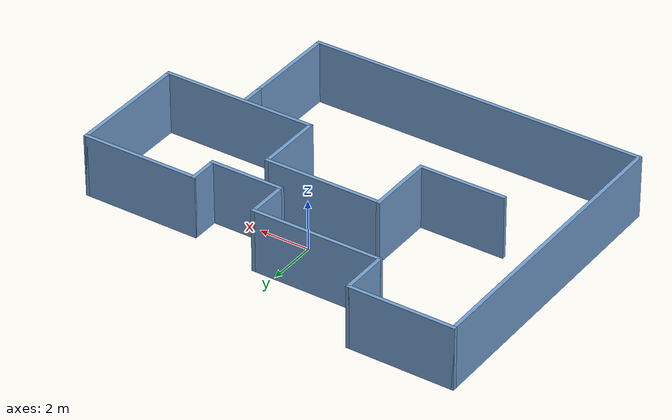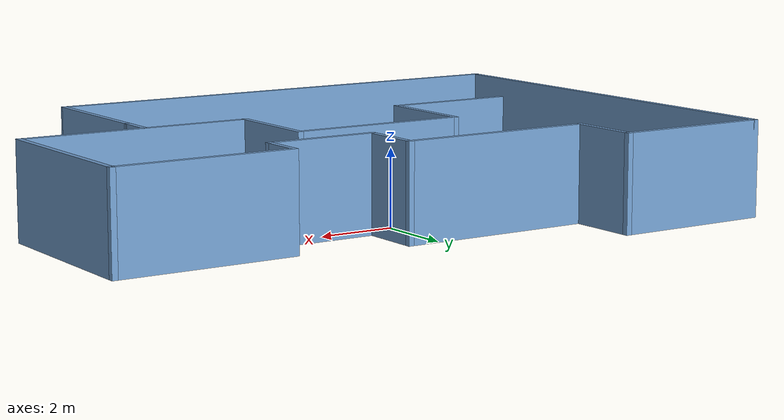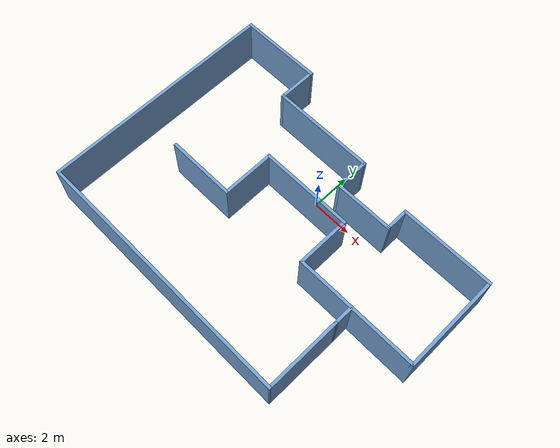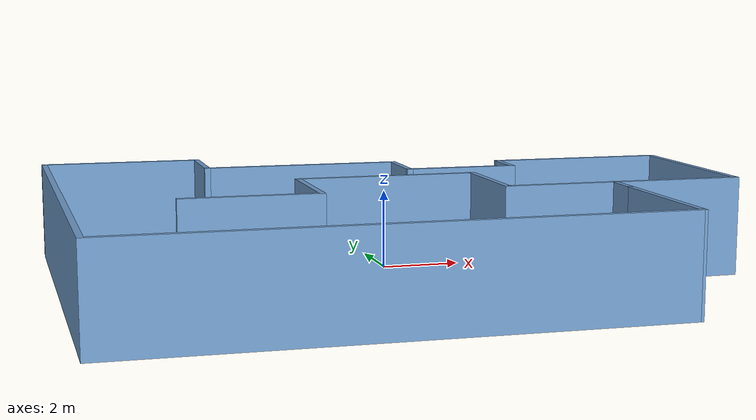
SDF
<?xml version='1.0'?>
<sdf version='1.7'>
  <model name='Building'>
    <pose>-0.055329 -2.0461 0 0 -0 0</pose>
    <link name='Wall_0'>
      <collision name='Wall_0_Collision'>
        <geometry>
          <box>
            <size>3.5 0.15 2.5</size>
          </box>
        </geometry>
        <pose>0 0 1.25 0 -0 0</pose>
      </collision>
      <visual name='Wall_0_Visual'>
        <pose>0 0 1.25 0 -0 0</pose>
        <geometry>
          <box>
            <size>3.5 0.15 2.5</size>
          </box>
        </geometry>
        <material>
          <script>
            <uri>file://media/materials/scripts/gazebo.material</uri>
            <name>Gazebo/Grey</name>
          </script>
          <ambient>0.447059 0.623529 0.811765 1</ambient>
        </material>
        <meta>
          <layer>0</layer>
        </meta>
      </visual>
      <pose>-4.05 -1.27487 0 0 -0 0</pose>
    </link>
    <link name='Wall_1'>
      <collision name='Wall_1_Collision'>
        <geometry>
          <box>
            <size>2.75 0.15 2.5</size>
          </box>
        </geometry>
        <pose>0 0 1.25 0 -0 0</pose>
      </collision>
      <visual name='Wall_1_Visual'>
        <pose>0 0 1.25 0 -0 0</pose>
        <geometry>
          <box>
            <size>2.75 0.15 2.5</size>
          </box>
        </geometry>
        <material>
          <script>
            <uri>file://media/materials/scripts/gazebo.material</uri>
            <name>Gazebo/Grey</name>
          </script>
          <ambient>0.447059 0.623529 0.811765 1</ambient>
        </material>
        <meta>
          <layer>0</layer>
        </meta>
      </visual>
      <pose>-2.375 0.025133 0 0 -0 1.5708</pose>
    </link>
    <link name='Wall_10'>
      <collision name='Wall_10_Collision'>
        <geometry>
          <box>
            <size>5.25 0.15 2.5</size>
          </box>
        </geometry>
        <pose>0 0 1.25 0 -0 0</pose>
      </collision>
      <visual name='Wall_10_Visual'>
        <pose>0 0 1.25 0 -0 0</pose>
        <geometry>
          <box>
            <size>5.25 0.15 2.5</size>
          </box>
        </geometry>
        <material>
          <script>
            <uri>file://media/materials/scripts/gazebo.material</uri>
            <name>Gazebo/Grey</name>
          </script>
          <ambient>0.447059 0.623529 0.811765 1</ambient>
        </material>
        <meta>
          <layer>0</layer>
        </meta>
      </visual>
      <pose>-1.675 4.07513 0 0 -0 3.14159</pose>
    </link>
    <link name='Wall_11'>
      <collision name='Wall_11_Collision'>
        <geometry>
          <box>
            <size>2 0.15 2.5</size>
          </box>
        </geometry>
        <pose>0 0 1.25 0 -0 0</pose>
      </collision>
      <visual name='Wall_11_Visual'>
        <pose>0 0 1.25 0 -0 0</pose>
        <geometry>
          <box>
            <size>2 0.15 2.5</size>
          </box>
        </geometry>
        <material>
          <script>
            <uri>file://media/materials/scripts/gazebo.material</uri>
            <name>Gazebo/Grey</name>
          </script>
          <ambient>0.447059 0.623529 0.811765 1</ambient>
        </material>
        <meta>
          <layer>0</layer>
        </meta>
      </visual>
      <pose>-4.225 5.00013 0 0 -0 1.5708</pose>
    </link>
    <link name='Wall_12'>
      <collision name='Wall_12_Collision'>
        <geometry>
          <box>
            <size>4.25 0.15 2.5</size>
          </box>
        </geometry>
        <pose>0 0 1.25 0 -0 0</pose>
      </collision>
      <visual name='Wall_12_Visual'>
        <pose>0 0 1.25 0 -0 0</pose>
        <geometry>
          <box>
            <size>4.25 0.15 2.5</size>
          </box>
        </geometry>
        <material>
          <script>
            <uri>file://media/materials/scripts/gazebo.material</uri>
            <name>Gazebo/Grey</name>
          </script>
          <ambient>0.447059 0.623529 0.811765 1</ambient>
        </material>
        <meta>
          <layer>0</layer>
        </meta>
      </visual>
      <pose>-6.275 5.92513 0 0 -0 3.14159</pose>
    </link>
    <link name='Wall_13'>
      <collision name='Wall_13_Collision'>
        <geometry>
          <box>
            <size>12 0.15 2.5</size>
          </box>
        </geometry>
        <pose>0 0 1.25 0 -0 0</pose>
      </collision>
      <visual name='Wall_13_Visual'>
        <pose>0 0 1.25 0 -0 0</pose>
        <geometry>
          <box>
            <size>12 0.15 2.5</size>
          </box>
        </geometry>
        <material>
          <script>
            <uri>file://media/materials/scripts/gazebo.material</uri>
            <name>Gazebo/Grey</name>
          </script>
          <ambient>0.447059 0.623529 0.811765 1</ambient>
        </material>
        <meta>
          <layer>0</layer>
        </meta>
      </visual>
      <pose>-8.325 0.000133 0 0 -0 -1.5708</pose>
    </link>
    <link name='Wall_14'>
      <collision name='Wall_14_Collision'>
        <geometry>
          <box>
            <size>13.5 0.15 2.5</size>
          </box>
        </geometry>
        <pose>0 0 1.25 0 -0 0</pose>
      </collision>
      <visual name='Wall_14_Visual'>
        <pose>0 0 1.25 0 -0 0</pose>
        <geometry>
          <box>
            <size>13.5 0.15 2.5</size>
          </box>
        </geometry>
        <material>
          <script>
            <uri>file://media/materials/scripts/gazebo.material</uri>
            <name>Gazebo/Grey</name>
          </script>
          <ambient>0.447059 0.623529 0.811765 1</ambient>
        </material>
        <meta>
          <layer>0</layer>
        </meta>
      </visual>
      <pose>-1.65 -5.92487 0 0 -0 0</pose>
    </link>
    <link name='Wall_15'>
      <collision name='Wall_15_Collision'>
        <geometry>
          <box>
            <size>3.86777 0.15 2.5</size>
          </box>
        </geometry>
        <pose>0 0 1.25 0 -0 0</pose>
      </collision>
      <visual name='Wall_15_Visual'>
        <pose>0 0 1.25 0 -0 0</pose>
        <geometry>
          <box>
            <size>3.86777 0.15 2.5</size>
          </box>
        </geometry>
        <material>
          <script>
            <uri>file://media/materials/scripts/gazebo.material</uri>
            <name>Gazebo/Grey</name>
          </script>
          <ambient>0.447059 0.623529 0.811765 1</ambient>
        </material>
        <meta>
          <layer>0</layer>
        </meta>
      </visual>
      <pose>5.03161 -4.06599 0 0 -0 1.56724</pose>
    </link>
    <link name='Wall_16'>
      <collision name='Wall_16_Collision'>
        <geometry>
          <box>
            <size>1 0.15 2.5</size>
          </box>
        </geometry>
        <pose>0 0 1.25 0 -0 0</pose>
      </collision>
      <visual name='Wall_16_Visual'>
        <pose>0 0 1.25 0 -0 0</pose>
        <geometry>
          <box>
            <size>1 0.15 2.5</size>
          </box>
        </geometry>
        <material>
          <script>
            <uri>file://media/materials/scripts/gazebo.material</uri>
            <name>Gazebo/Grey</name>
          </script>
          <ambient>0.447059 0.623529 0.811765 1</ambient>
        </material>
        <meta>
          <layer>0</layer>
        </meta>
      </visual>
      <pose>5.03822 -1.76889 0 0 -0 1.5708</pose>
    </link>
    <link name='Wall_2'>
      <collision name='Wall_2_Collision'>
        <geometry>
          <box>
            <size>4.75 0.15 2.5</size>
          </box>
        </geometry>
        <pose>0 0 1.25 0 -0 0</pose>
      </collision>
      <visual name='Wall_2_Visual'>
        <pose>0 0 1.25 0 -0 0</pose>
        <geometry>
          <box>
            <size>4.75 0.15 2.5</size>
          </box>
        </geometry>
        <material>
          <script>
            <uri>file://media/materials/scripts/gazebo.material</uri>
            <name>Gazebo/Grey</name>
          </script>
          <ambient>0.447059 0.623529 0.811765 1</ambient>
        </material>
        <meta>
          <layer>0</layer>
        </meta>
      </visual>
      <pose>-0.075 1.32513 0 0 -0 0</pose>
    </link>
    <link name='Wall_3'>
      <collision name='Wall_3_Collision'>
        <geometry>
          <box>
            <size>2.75 0.15 2.5</size>
          </box>
        </geometry>
        <pose>0 0 1.25 0 -0 0</pose>
      </collision>
      <visual name='Wall_3_Visual'>
        <pose>0 0 1.25 0 -0 0</pose>
        <geometry>
          <box>
            <size>2.75 0.15 2.5</size>
          </box>
        </geometry>
        <material>
          <script>
            <uri>file://media/materials/scripts/gazebo.material</uri>
            <name>Gazebo/Grey</name>
          </script>
          <ambient>0.447059 0.623529 0.811765 1</ambient>
        </material>
        <meta>
          <layer>0</layer>
        </meta>
      </visual>
      <pose>2.225 0.025133 0 0 -0 -1.5708</pose>
    </link>
    <link name='Wall_4'>
      <collision name='Wall_4_Collision'>
        <geometry>
          <box>
            <size>6.25 0.15 2.5</size>
          </box>
        </geometry>
        <pose>0 0 1.25 0 -0 0</pose>
      </collision>
      <visual name='Wall_4_Visual'>
        <pose>0 0 1.25 0 -0 0</pose>
        <geometry>
          <box>
            <size>6.25 0.15 2.5</size>
          </box>
        </geometry>
        <material>
          <script>
            <uri>file://media/materials/scripts/gazebo.material</uri>
            <name>Gazebo/Grey</name>
          </script>
          <ambient>0.447059 0.623529 0.811765 1</ambient>
        </material>
        <meta>
          <layer>0</layer>
        </meta>
      </visual>
      <pose>5.275 -1.27487 0 0 -0 0</pose>
    </link>
    <link name='Wall_5'>
      <collision name='Wall_5_Collision'>
        <geometry>
          <box>
            <size>5 0.15 2.5</size>
          </box>
        </geometry>
        <pose>0 0 1.25 0 -0 0</pose>
      </collision>
      <visual name='Wall_5_Visual'>
        <pose>0 0 1.25 0 -0 0</pose>
        <geometry>
          <box>
            <size>5 0.15 2.5</size>
          </box>
        </geometry>
        <material>
          <script>
            <uri>file://media/materials/scripts/gazebo.material</uri>
            <name>Gazebo/Grey</name>
          </script>
          <ambient>0.447059 0.623529 0.811765 1</ambient>
        </material>
        <meta>
          <layer>0</layer>
        </meta>
      </visual>
      <pose>8.325 1.15013 0 0 -0 1.5708</pose>
    </link>
    <link name='Wall_6'>
      <collision name='Wall_6_Collision'>
        <geometry>
          <box>
            <size>4.75 0.15 2.5</size>
          </box>
        </geometry>
        <pose>0 0 1.25 0 -0 0</pose>
      </collision>
      <visual name='Wall_6_Visual'>
        <pose>0 0 1.25 0 -0 0</pose>
        <geometry>
          <box>
            <size>4.75 0.15 2.5</size>
          </box>
        </geometry>
        <material>
          <script>
            <uri>file://media/materials/scripts/gazebo.material</uri>
            <name>Gazebo/Grey</name>
          </script>
          <ambient>0.447059 0.623529 0.811765 1</ambient>
        </material>
        <meta>
          <layer>0</layer>
        </meta>
      </visual>
      <pose>6.025 3.57513 0 0 -0 3.14159</pose>
    </link>
    <link name='Wall_7'>
      <collision name='Wall_7_Collision'>
        <geometry>
          <box>
            <size>1.25 0.15 2.5</size>
          </box>
        </geometry>
        <pose>0 0 1.25 0 -0 0</pose>
      </collision>
      <visual name='Wall_7_Visual'>
        <pose>0 0 1.25 0 -0 0</pose>
        <geometry>
          <box>
            <size>1.25 0.15 2.5</size>
          </box>
        </geometry>
        <material>
          <script>
            <uri>file://media/materials/scripts/gazebo.material</uri>
            <name>Gazebo/Grey</name>
          </script>
          <ambient>0.447059 0.623529 0.811765 1</ambient>
        </material>
        <meta>
          <layer>0</layer>
        </meta>
      </visual>
      <pose>3.725 3.02513 0 0 -0 -1.5708</pose>
    </link>
    <link name='Wall_8'>
      <collision name='Wall_8_Collision'>
        <geometry>
          <box>
            <size>3 0.15 2.5</size>
          </box>
        </geometry>
        <pose>0 0 1.25 0 -0 0</pose>
      </collision>
      <visual name='Wall_8_Visual'>
        <pose>0 0 1.25 0 -0 0</pose>
        <geometry>
          <box>
            <size>3 0.15 2.5</size>
          </box>
        </geometry>
        <material>
          <script>
            <uri>file://media/materials/scripts/gazebo.material</uri>
            <name>Gazebo/Grey</name>
          </script>
          <ambient>0.447059 0.623529 0.811765 1</ambient>
        </material>
        <meta>
          <layer>0</layer>
        </meta>
      </visual>
      <pose>2.3 2.47513 0 0 -0 3.14159</pose>
    </link>
    <link name='Wall_9'>
      <collision name='Wall_9_Collision'>
        <geometry>
          <box>
            <size>1.75 0.15 2.5</size>
          </box>
        </geometry>
        <pose>0 0 1.25 0 -0 0</pose>
      </collision>
      <visual name='Wall_9_Visual'>
        <pose>0 0 1.25 0 -0 0</pose>
        <geometry>
          <box>
            <size>1.75 0.15 2.5</size>
          </box>
        </geometry>
        <material>
          <script>
            <uri>file://media/materials/scripts/gazebo.material</uri>
            <name>Gazebo/Grey</name>
          </script>
          <ambient>0.447059 0.623529 0.811765 1</ambient>
        </material>
        <meta>
          <layer>0</layer>
        </meta>
      </visual>
      <pose>0.875 3.27513 0 0 -0 1.5708</pose>
    </link>
    <static>1</static>
  </model>
</sdf>
